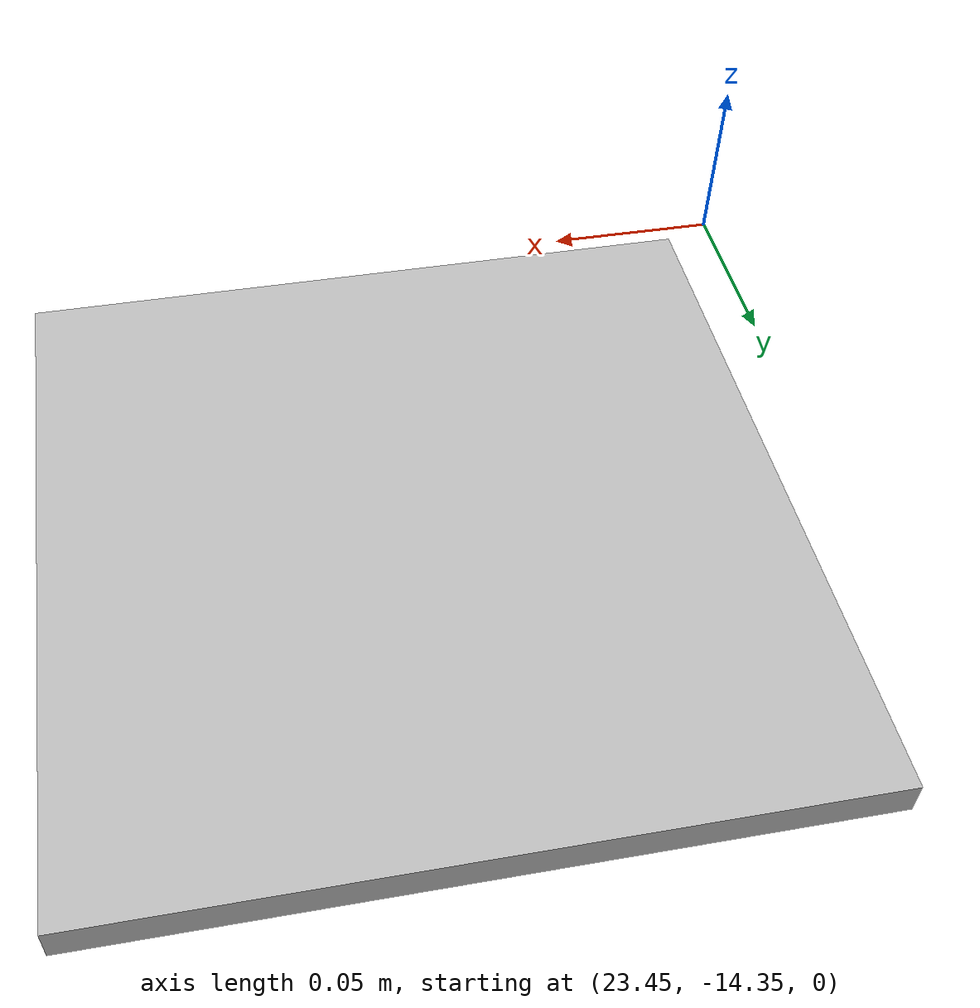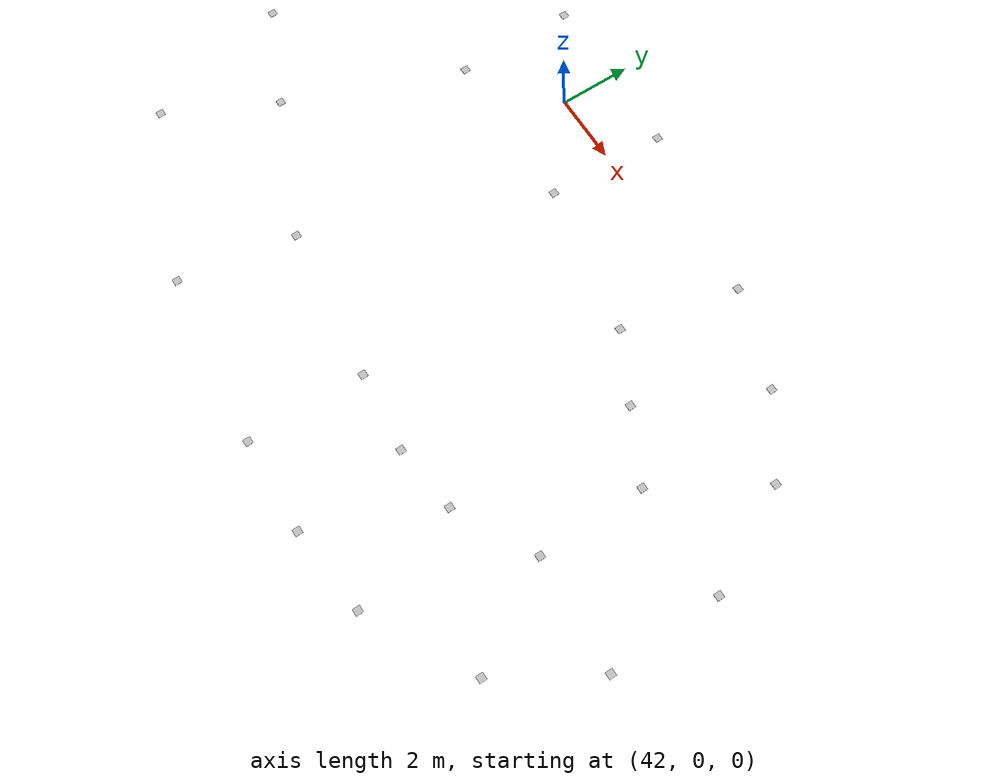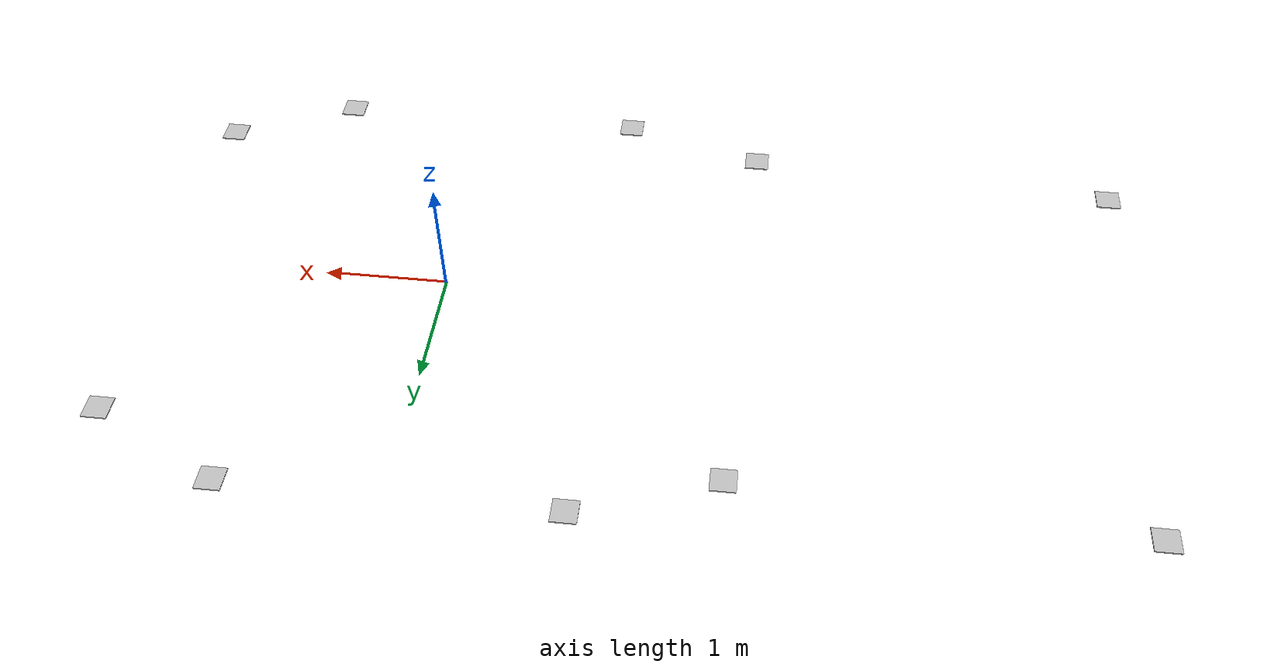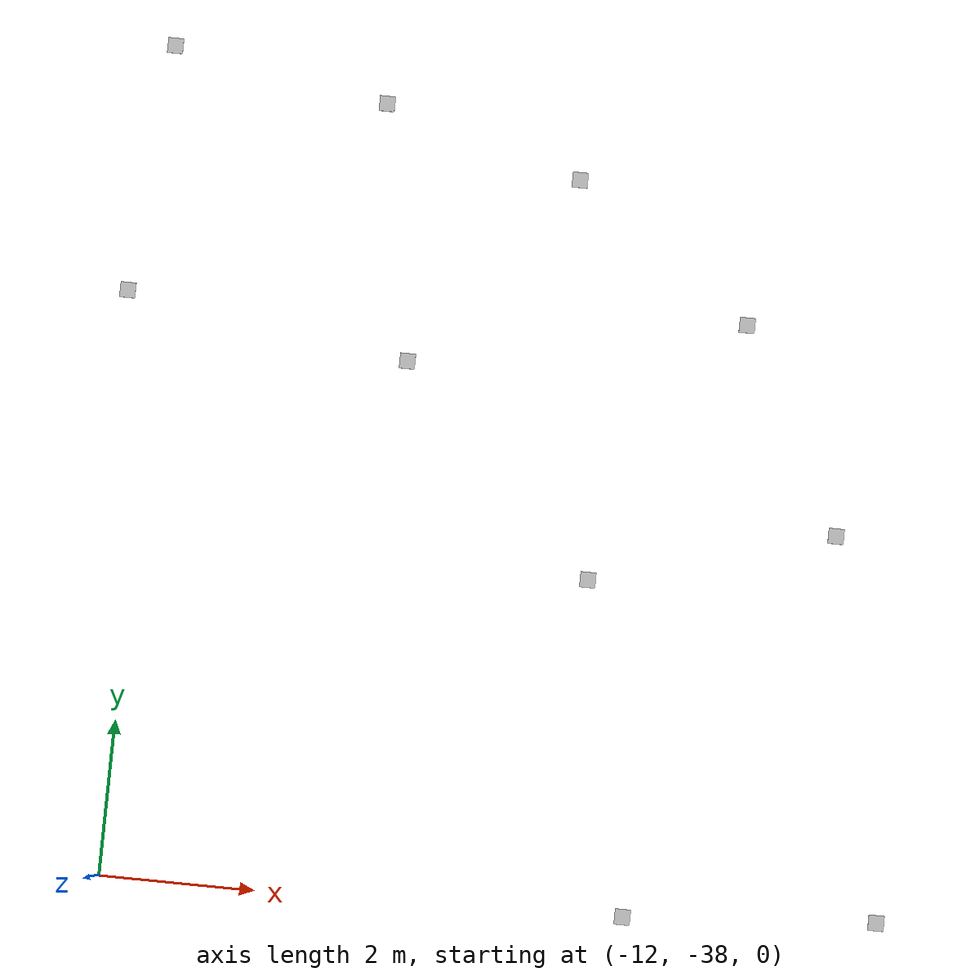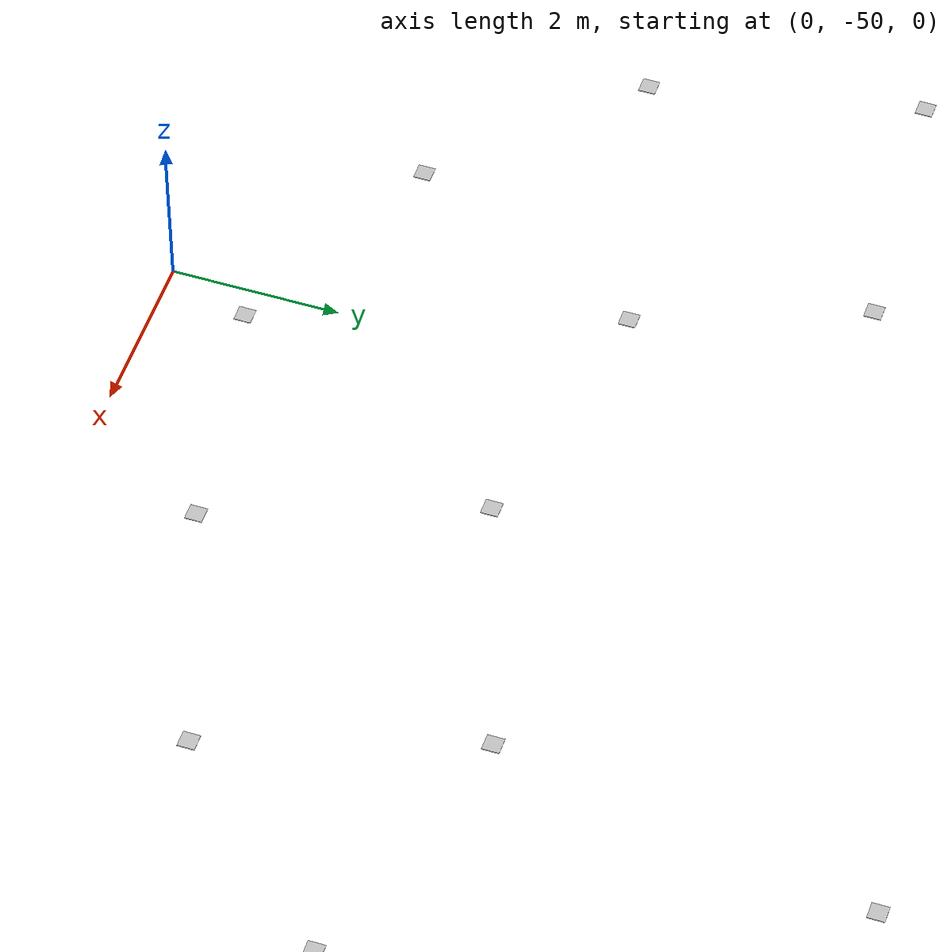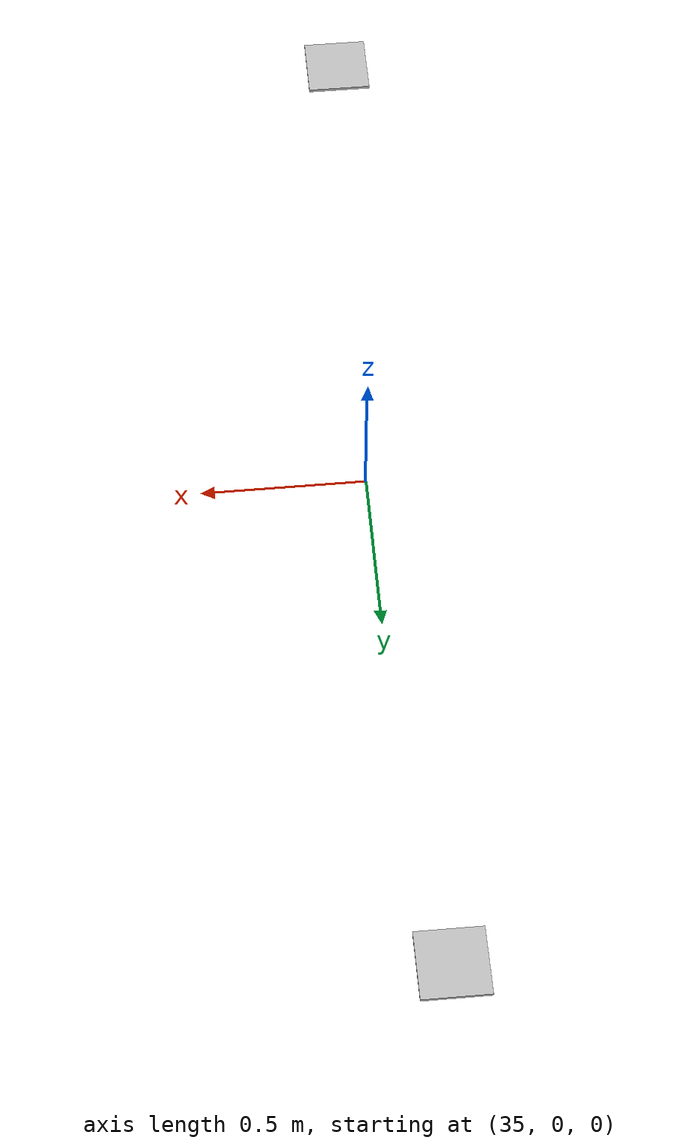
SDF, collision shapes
<?xml version='1.0' encoding='UTF-8'?>
<sdf version="1.4">
  <model name="some track">
    <include>
      <uri>model://cone_yellow</uri>
      <pose>2.2983281812459637 -1.6682850910150564 0 0 0 0</pose>
      <name>cone_right</name>
    </include>
    <include>
      <uri>model://cone_yellow</uri>
      <pose>6.982587252075812 -1.6948687072898894 0 0 0 0</pose>
      <name>cone_right</name>
    </include>
    <include>
      <uri>model://cone_yellow</uri>
      <pose>11.644495487198242 -1.693786557213887 0 0 0 0</pose>
      <name>cone_right</name>
    </include>
    <include>
      <uri>model://cone_yellow</uri>
      <pose>16.300293746858536 -1.7027315998343886 0 0 0 0</pose>
      <name>cone_right</name>
    </include>
    <include>
      <uri>model://cone_yellow</uri>
      <pose>20.975813980639224 -1.669371833615148 0 0 0 0</pose>
      <name>cone_right</name>
    </include>
    <include>
      <uri>model://cone_yellow</uri>
      <pose>25.55301075229701 -1.7794706265098923 0 0 0 0</pose>
      <name>cone_right</name>
    </include>
    <include>
      <uri>model://cone_yellow</uri>
      <pose>30.315991516925237 -1.7879611173422245 0 0 0 0</pose>
      <name>cone_right</name>
    </include>
    <include>
      <uri>model://cone_yellow</uri>
      <pose>34.93798829965368 -1.6703357599450799 0 0 0 0</pose>
      <name>cone_right</name>
    </include>
    <include>
      <uri>model://cone_yellow</uri>
      <pose>39.59926561581605 -1.6854315774158828 0 0 0 0</pose>
      <name>cone_right</name>
    </include>
    <include>
      <uri>model://cone_yellow</uri>
      <pose>44.18816428009665 -1.7781746221510328 0 0 0 0</pose>
      <name>cone_right</name>
    </include>
    <include>
      <uri>model://cone_yellow</uri>
      <pose>48.42033374608976 -2.535780841112446 0 0 0 0</pose>
      <name>cone_right</name>
    </include>
    <include>
      <uri>model://cone_yellow</uri>
      <pose>52.2090880111453 -4.460641777440313 0 0 0 0</pose>
      <name>cone_right</name>
    </include>
    <include>
      <uri>model://cone_yellow</uri>
      <pose>52.255210874293226 -7.442374793761164 0 0 0 0</pose>
      <name>cone_right</name>
    </include>
    <include>
      <uri>model://cone_yellow</uri>
      <pose>50.03702087359863 -8.606863149481823 0 0 0 0</pose>
      <name>cone_right</name>
    </include>
    <include>
      <uri>model://cone_yellow</uri>
      <pose>45.88243260369387 -8.60110458079156 0 0 0 0</pose>
      <name>cone_right</name>
    </include>
    <include>
      <uri>model://cone_yellow</uri>
      <pose>41.52097401898679 -8.0699484162338 0 0 0 0</pose>
      <name>cone_right</name>
    </include>
    <include>
      <uri>model://cone_yellow</uri>
      <pose>37.706082874657774 -6.425041566865744 0 0 0 0</pose>
      <name>cone_right</name>
    </include>
    <include>
      <uri>model://cone_yellow</uri>
      <pose>27.674244861670832 -4.986297316222901 0 0 0 0</pose>
      <name>cone_right</name>
    </include>
    <include>
      <uri>model://cone_yellow</uri>
      <pose>23.011733204899624 -8.206764021703423 0 0 0 0</pose>
      <name>cone_right</name>
    </include>
    <include>
      <uri>model://cone_yellow</uri>
      <pose>20.658814570373394 -12.786760702277913 0 0 0 0</pose>
      <name>cone_right</name>
    </include>
    <include>
      <uri>model://cone_yellow</uri>
      <pose>17.993858103498074 -16.1003595964775 0 0 0 0</pose>
      <name>cone_right</name>
    </include>
    <include>
      <uri>model://cone_yellow</uri>
      <pose>14.664824589777282 -18.516237206771407 0 0 0 0</pose>
      <name>cone_right</name>
    </include>
    <include>
      <uri>model://cone_yellow</uri>
      <pose>7.789307298620218 -25.776926409602552 0 0 0 0</pose>
      <name>cone_right</name>
    </include>
    <include>
      <uri>model://cone_yellow</uri>
      <pose>7.105474716173122 -30.842135572265743 0 0 0 0</pose>
      <name>cone_right</name>
    </include>
    <include>
      <uri>model://cone_yellow</uri>
      <pose>6.772097531679574 -35.470079132483406 0 0 0 0</pose>
      <name>cone_right</name>
    </include>
    <include>
      <uri>model://cone_yellow</uri>
      <pose>6.025020049607155 -39.9045670397511 0 0 0 0</pose>
      <name>cone_right</name>
    </include>
    <include>
      <uri>model://cone_yellow</uri>
      <pose>5.233380031915614 -44.38629841499801 0 0 0 0</pose>
      <name>cone_right</name>
    </include>
    <include>
      <uri>model://cone_yellow</uri>
      <pose>2.1566275817163474 -45.43943078794299 0 0 0 0</pose>
      <name>cone_right</name>
    </include>
    <include>
      <uri>model://cone_yellow</uri>
      <pose>-0.9637691967930437 -44.85160164575725 0 0 0 0</pose>
      <name>cone_right</name>
    </include>
    <include>
      <uri>model://cone_yellow</uri>
      <pose>-1.9697800434846662 -42.25535256079444 0 0 0 0</pose>
      <name>cone_right</name>
    </include>
    <include>
      <uri>model://cone_yellow</uri>
      <pose>-2.0395773826013137 -37.6132664224357 0 0 0 0</pose>
      <name>cone_right</name>
    </include>
    <include>
      <uri>model://cone_yellow</uri>
      <pose>-3.015936508101478 -32.723583387658636 0 0 0 0</pose>
      <name>cone_right</name>
    </include>
    <include>
      <uri>model://cone_yellow</uri>
      <pose>-6.755740942065172 -28.446719224266822 0 0 0 0</pose>
      <name>cone_right</name>
    </include>
    <include>
      <uri>model://cone_yellow</uri>
      <pose>-12.16279343814271 -27.21842802335284 0 0 0 0</pose>
      <name>cone_right</name>
    </include>
    <include>
      <uri>model://cone_yellow</uri>
      <pose>-16.770478585952507 -26.81451529944214 0 0 0 0</pose>
      <name>cone_right</name>
    </include>
    <include>
      <uri>model://cone_yellow</uri>
      <pose>-21.76174928595518 -26.838542172815135 0 0 0 0</pose>
      <name>cone_right</name>
    </include>
    <include>
      <uri>model://cone_yellow</uri>
      <pose>-26.14559196074061 -26.65818543377615 0 0 0 0</pose>
      <name>cone_right</name>
    </include>
    <include>
      <uri>model://cone_yellow</uri>
      <pose>-28.485716054786277 -24.260466837322138 0 0 0 0</pose>
      <name>cone_right</name>
    </include>
    <include>
      <uri>model://cone_yellow</uri>
      <pose>-29.13212784640816 -20.55132954639145 0 0 0 0</pose>
      <name>cone_right</name>
    </include>
    <include>
      <uri>model://cone_yellow</uri>
      <pose>-28.389382264348985 -16.472859385998554 0 0 0 0</pose>
      <name>cone_right</name>
    </include>
    <include>
      <uri>model://cone_yellow</uri>
      <pose>-26.81137371614189 -12.392594537637182 0 0 0 0</pose>
      <name>cone_right</name>
    </include>
    <include>
      <uri>model://cone_yellow</uri>
      <pose>-24.526907699543287 -8.682945668167946 0 0 0 0</pose>
      <name>cone_right</name>
    </include>
    <include>
      <uri>model://cone_yellow</uri>
      <pose>-21.335977622072555 -6.265621158150918 0 0 0 0</pose>
      <name>cone_right</name>
    </include>
    <include>
      <uri>model://cone_yellow</uri>
      <pose>-17.378269946534022 -3.8390546769058593 0 0 0 0</pose>
      <name>cone_right</name>
    </include>
    <include>
      <uri>model://cone_yellow</uri>
      <pose>-13.431600190032396 -2.20742095163187 0 0 0 0</pose>
      <name>cone_right</name>
    </include>
    <include>
      <uri>model://cone_yellow</uri>
      <pose>-9.183840774334685 -1.6680678298194618 0 0 0 0</pose>
      <name>cone_right</name>
    </include>
    <include>
      <uri>model://cone_yellow</uri>
      <pose>-2.462494181612797 -1.7887352328132593 0 0 0 0</pose>
      <name>cone_right</name>
    </include>
    <include>
      <uri>model://cone_yellow</uri>
      <pose>-5.528576731787211 -1.6183973133591252 0 0 0 0</pose>
      <name>cone_right</name>
    </include>
    <include>
      <uri>model://cone_yellow</uri>
      <pose>50.28548154268408 -3.4921144273546076 0 0 0 0</pose>
      <name>cone_right</name>
    </include>
    <include>
      <uri>model://cone_yellow</uri>
      <pose>48.12786789626505 -8.82936923691748 0 0 0 0</pose>
      <name>cone_right</name>
    </include>
    <include>
      <uri>model://cone_yellow</uri>
      <pose>35.011848098296724 -5.195493621895949 0 0 0 0</pose>
      <name>cone_right</name>
    </include>
    <include>
      <uri>model://cone_yellow</uri>
      <pose>31.718648322183462 -4.627700557048833 0 0 0 0</pose>
      <name>cone_right</name>
    </include>
    <include>
      <uri>model://cone_yellow</uri>
      <pose>25.18902807644165 -6.160741832136047 0 0 0 0</pose>
      <name>cone_right</name>
    </include>
    <include>
      <uri>model://cone_yellow</uri>
      <pose>11.817501399292116 -20.062208703142865 0 0 0 0</pose>
      <name>cone_right</name>
    </include>
    <include>
      <uri>model://cone_yellow</uri>
      <pose>9.333406740585993 -22.664593583692145 0 0 0 0</pose>
      <name>cone_right</name>
    </include>
    <include>
      <uri>model://cone_yellow</uri>
      <pose>-4.417831548680056 -30.116877559810526 0 0 0 0</pose>
      <name>cone_right</name>
    </include>
    <include>
      <uri>model://cone_yellow</uri>
      <pose>-9.346590792144589 -27.7017855305129 0 0 0 0</pose>
      <name>cone_right</name>
    </include>
    <include>
      <uri>model://cone_blue</uri>
      <pose>2.359123602029288 1.5811462310491256 0 0 0 0</pose>
      <name>cone_left</name>
    </include>
    <include>
      <uri>model://cone_blue</uri>
      <pose>6.9905400705419956 1.5551215623383818 0 0 0 0</pose>
      <name>cone_left</name>
    </include>
    <include>
      <uri>model://cone_blue</uri>
      <pose>11.644581631371246 1.5562134416444484 0 0 0 0</pose>
      <name>cone_left</name>
    </include>
    <include>
      <uri>model://cone_blue</uri>
      <pose>16.304553122136312 1.5472656090447579 0 0 0 0</pose>
      <name>cone_left</name>
    </include>
    <include>
      <uri>model://cone_blue</uri>
      <pose>20.945626957978497 1.5804879700783716 0 0 0 0</pose>
      <name>cone_left</name>
    </include>
    <include>
      <uri>model://cone_blue</uri>
      <pose>25.682059526488242 1.4679662726276015 0 0 0 0</pose>
      <name>cone_left</name>
    </include>
    <include>
      <uri>model://cone_blue</uri>
      <pose>30.229655179321114 1.4608919167005756 0 0 0 0</pose>
      <name>cone_left</name>
    </include>
    <include>
      <uri>model://cone_blue</uri>
      <pose>34.91342375929402 1.579571405399327 0 0 0 0</pose>
      <name>cone_left</name>
    </include>
    <include>
      <uri>model://cone_blue</uri>
      <pose>39.590982606322214 1.5645578674521656 0 0 0 0</pose>
      <name>cone_left</name>
    </include>
    <include>
      <uri>model://cone_blue</uri>
      <pose>44.318969431239374 1.4691920052002017 0 0 0 0</pose>
      <name>cone_left</name>
    </include>
    <include>
      <uri>model://cone_blue</uri>
      <pose>49.160937983913975 0.628710486560426 0 0 0 0</pose>
      <name>cone_left</name>
    </include>
    <include>
      <uri>model://cone_blue</uri>
      <pose>53.92562316162598 -1.7009303655053163 0 0 0 0</pose>
      <name>cone_left</name>
    </include>
    <include>
      <uri>model://cone_blue</uri>
      <pose>55.50133031432917 -7.601146897799435 0 0 0 0</pose>
      <name>cone_left</name>
    </include>
    <include>
      <uri>model://cone_blue</uri>
      <pose>50.99316027872434 -11.713034013739913 0 0 0 0</pose>
      <name>cone_left</name>
    </include>
    <include>
      <uri>model://cone_blue</uri>
      <pose>45.856039965146195 -11.85099741419861 0 0 0 0</pose>
      <name>cone_left</name>
    </include>
    <include>
      <uri>model://cone_blue</uri>
      <pose>40.970913021843856 -11.273061417584536 0 0 0 0</pose>
      <name>cone_left</name>
    </include>
    <include>
      <uri>model://cone_blue</uri>
      <pose>36.21686427225912 -9.313765844859374 0 0 0 0</pose>
      <name>cone_left</name>
    </include>
    <include>
      <uri>model://cone_blue</uri>
      <pose>32.208180989826786 -7.964641681361126 0 0 0 0</pose>
      <name>cone_left</name>
    </include>
    <include>
      <uri>model://cone_blue</uri>
      <pose>28.18329888849207 -8.196182672084865 0 0 0 0</pose>
      <name>cone_left</name>
    </include>
    <include>
      <uri>model://cone_blue</uri>
      <pose>25.35571653069667 -10.458039697489356 0 0 0 0</pose>
      <name>cone_left</name>
    </include>
    <include>
      <uri>model://cone_blue</uri>
      <pose>23.566179343784547 -14.239251691691585 0 0 0 0</pose>
      <name>cone_left</name>
    </include>
    <include>
      <uri>model://cone_blue</uri>
      <pose>20.429756944322026 -18.251846718742588 0 0 0 0</pose>
      <name>cone_left</name>
    </include>
    <include>
      <uri>model://cone_blue</uri>
      <pose>16.290190625113624 -21.33060840673331 0 0 0 0</pose>
      <name>cone_left</name>
    </include>
    <include>
      <uri>model://cone_blue</uri>
      <pose>12.397313880025363 -23.500648518725445 0 0 0 0</pose>
      <name>cone_left</name>
    </include>
    <include>
      <uri>model://cone_blue</uri>
      <pose>10.843185405050686 -26.88882951287399 0 0 0 0</pose>
      <name>cone_left</name>
    </include>
    <include>
      <uri>model://cone_blue</uri>
      <pose>10.345123651068983 -31.101316548859526 0 0 0 0</pose>
      <name>cone_left</name>
    </include>
    <include>
      <uri>model://cone_blue</uri>
      <pose>10.00921460956712 -35.75916912547659 0 0 0 0</pose>
      <name>cone_left</name>
    </include>
    <include>
      <uri>model://cone_blue</uri>
      <pose>9.230760660260373 -40.43910154491306 0 0 0 0</pose>
      <name>cone_left</name>
    </include>
    <include>
      <uri>model://cone_blue</uri>
      <pose>8.356137429252144 -45.286790634497976 0 0 0 0</pose>
      <name>cone_left</name>
    </include>
    <include>
      <uri>model://cone_blue</uri>
      <pose>3.2722568706172463 -48.49194963141414 0 0 0 0</pose>
      <name>cone_left</name>
    </include>
    <include>
      <uri>model://cone_blue</uri>
      <pose>-2.3615513253719556 -47.785661140897965 0 0 0 0</pose>
      <name>cone_left</name>
    </include>
    <include>
      <uri>model://cone_blue</uri>
      <pose>-5.204710090522019 -42.56796668519528 0 0 0 0</pose>
      <name>cone_left</name>
    </include>
    <include>
      <uri>model://cone_blue</uri>
      <pose>-5.280208400528803 -37.85986448740428 0 0 0 0</pose>
      <name>cone_left</name>
    </include>
    <include>
      <uri>model://cone_blue</uri>
      <pose>-6.145017334014386 -33.60185053659693 0 0 0 0</pose>
      <name>cone_left</name>
    </include>
    <include>
      <uri>model://cone_blue</uri>
      <pose>-8.745096535236305 -31.01673173861743 0 0 0 0</pose>
      <name>cone_left</name>
    </include>
    <include>
      <uri>model://cone_blue</uri>
      <pose>-12.440658921309403 -30.456527894151225 0 0 0 0</pose>
      <name>cone_left</name>
    </include>
    <include>
      <uri>model://cone_blue</uri>
      <pose>-17.06994075596594 -30.050689338138273 0 0 0 0</pose>
      <name>cone_left</name>
    </include>
    <include>
      <uri>model://cone_blue</uri>
      <pose>-21.594394457970598 -30.08423044520826 0 0 0 0</pose>
      <name>cone_left</name>
    </include>
    <include>
      <uri>model://cone_blue</uri>
      <pose>-26.585748314519215 -29.878241704127387 0 0 0 0</pose>
      <name>cone_left</name>
    </include>
    <include>
      <uri>model://cone_blue</uri>
      <pose>-31.060680205572037 -26.24340900041418 0 0 0 0</pose>
      <name>cone_left</name>
    </include>
    <include>
      <uri>model://cone_blue</uri>
      <pose>-32.370739628992766 -20.82316354298524 0 0 0 0</pose>
      <name>cone_left</name>
    </include>
    <include>
      <uri>model://cone_blue</uri>
      <pose>-31.54982526727115 -15.715165499735543 0 0 0 0</pose>
      <name>cone_left</name>
    </include>
    <include>
      <uri>model://cone_blue</uri>
      <pose>-29.795972305977617 -11.106254280337195 0 0 0 0</pose>
      <name>cone_left</name>
    </include>
    <include>
      <uri>model://cone_blue</uri>
      <pose>-27.194287628950065 -6.826178501235615 0 0 0 0</pose>
      <name>cone_left</name>
    </include>
    <include>
      <uri>model://cone_blue</uri>
      <pose>-23.1072466649603 -3.5407163932632475 0 0 0 0</pose>
      <name>cone_left</name>
    </include>
    <include>
      <uri>model://cone_blue</uri>
      <pose>-19.083055164238925 -1.0720694291145298 0 0 0 0</pose>
      <name>cone_left</name>
    </include>
    <include>
      <uri>model://cone_blue</uri>
      <pose>-14.467015619007297 0.8732307471878333 0 0 0 0</pose>
      <name>cone_left</name>
    </include>
    <include>
      <uri>model://cone_blue</uri>
      <pose>-9.422528736824384 1.573155404788503 0 0 0 0</pose>
      <name>cone_left</name>
    </include>
    <include>
      <uri>model://cone_blue</uri>
      <pose>-5.528576731787211 1.9019196886929848 0 0 0 0</pose>
      <name>cone_left</name>
    </include>
    <include>
      <uri>model://cone_blue</uri>
      <pose>-2.4057148751280835 1.7315817692388507 0 0 0 0</pose>
      <name>cone_left</name>
    </include>
    <include>
      <uri>model://cone_blue</uri>
      <pose>55.39561912630811 -4.457362637594706 0 0 0 0</pose>
      <name>cone_left</name>
    </include>
    <include>
      <uri>model://cone_blue</uri>
      <pose>53.91935715770562 -10.135293286065846 0 0 0 0</pose>
      <name>cone_left</name>
    </include>
    <include>
      <uri>model://cone_blue</uri>
      <pose>51.87530212425601 -0.31247326421077304 0 0 0 0</pose>
      <name>cone_left</name>
    </include>
    <include>
      <uri>model://cone_blue</uri>
      <pose>48.52532304165803 -11.9522310935766 0 0 0 0</pose>
      <name>cone_left</name>
    </include>
    <include>
      <uri>model://cone_blue</uri>
      <pose>6.228288417203334 -47.46611009680567 0 0 0 0</pose>
      <name>cone_left</name>
    </include>
    <include>
      <uri>model://cone_blue</uri>
      <pose>0.3630649174805427 -48.99402546227967 0 0 0 0</pose>
      <name>cone_left</name>
    </include>
    <include>
      <uri>model://cone_blue</uri>
      <pose>-4.5164067335493385 -45.74104436159309 0 0 0 0</pose>
      <name>cone_left</name>
    </include>
    <include>
      <uri>model://cone_blue</uri>
      <pose>-29.25877813574128 -28.6875373792058 0 0 0 0</pose>
      <name>cone_left</name>
    </include>
    <include>
      <uri>model://cone_orange_big</uri>
      <pose>-1.3 2.125 0 0 0 0</pose>
      <name>cone_orange_big</name>
    </include>
    <include>
      <uri>model://cone_orange_big</uri>
      <pose>-1.3 -2.125 0 0 0 0</pose>
      <name>cone_orange_big</name>
    </include>
    <include>
      <uri>model://cone_orange_big</uri>
      <pose>1.3 2.125 0 0 0 0</pose>
      <name>cone_orange_big</name>
    </include>
    <include>
      <uri>model://cone_orange_big</uri>
      <pose>1.3 -2.125 0 0 0 0</pose>
      <name>cone_orange_big</name>
    </include>
  </model>
</sdf>

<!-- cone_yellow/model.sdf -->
<sdf version='1.4'>
  <model name="cone_yellow">
    <link name="link">
    <collision name="collision"><geometry><box><size> 0.2 0.2 0.01</size>
             </box></geometry></collision>
      <visual name="visual">
        <geometry>
          <mesh>
            <uri>model://YellowCone.dae</uri>
            <scale>1 1 1</scale>
          </mesh>
        </geometry>
        <material>
            <script>
              <uri>model://cone_yellow/materials/scripts</uri>
              <uri>model://cone_yellow/materials/textures</uri>
              <name>cone_yellow/Image</name>
            </script>
        </material>
      </visual>
    </link>
  </model>
</sdf>

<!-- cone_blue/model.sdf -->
<sdf version='1.4'>
  <model name="cone_blue">
    <link name="link">
    <collision name="collision"><geometry><box><size> 0.2 0.2 0.01</size>
             </box></geometry></collision>
      <visual name="visual">
        <geometry>
          <mesh>
            <uri>model://BlueCone.dae</uri>
            <scale>1 1 1</scale>
          </mesh>
        </geometry>
        <material>
            <script>
              <uri>model://cone_blue/materials/scripts</uri>
              <uri>model://cone_blue/materials/textures</uri>
              <name>cone_blue/Image</name>
            </script>
        </material>
      </visual>
    </link>
  </model>
</sdf>

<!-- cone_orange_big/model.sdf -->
<sdf version='1.4'>
  <model name="cone_orange_big">
    <link name="link">
    <collision name="collision"><geometry><box><size> 0.2 0.2 0.01</size>
             </box></geometry></collision>
      <visual name="visual">
        <geometry>
          <mesh>
            <uri>model://BigOrangeCone.dae</uri>
            <scale>1 1 1</scale>
          </mesh>
        </geometry>
        <material>
            <script>
              <uri>model://cone_orange_big/materials/scripts</uri>
              <uri>model://cone_orange_big/materials/textures</uri>
              <name>cone_orange_big/Image</name>
            </script>
        </material>
      </visual>
    </link>
  </model>
</sdf>
